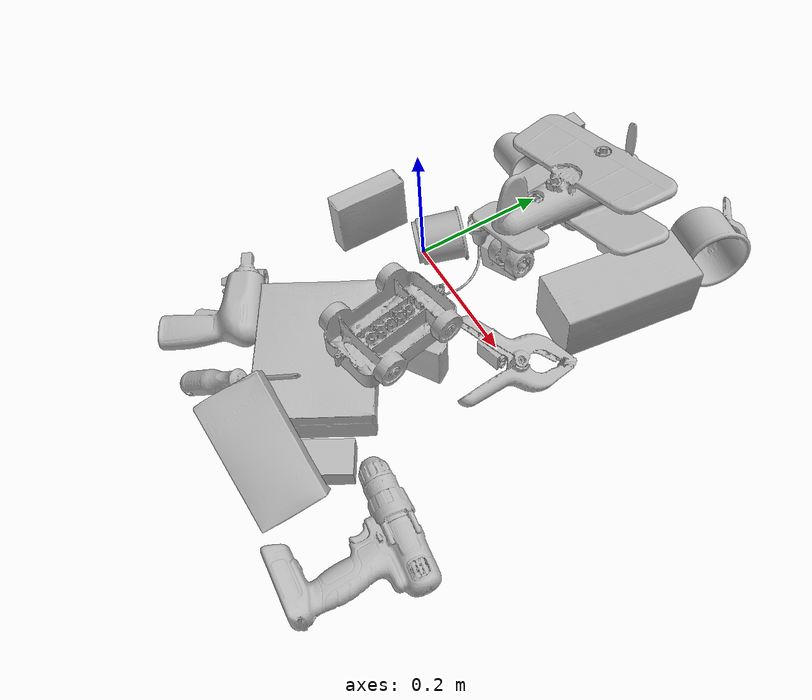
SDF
<sdf version="1.4">
  <world name="default">
    <light name="light1" type="point">
      <pose>0 0 1 0 0 0</pose>
      <diffuse>3 3 3 1</diffuse>
      <specular>3 3 3 1</specular>
    </light>
    <light name="light2" type="point">
      <pose>0 0.5 2 0 0 0</pose>
      <diffuse>1 1 1 1</diffuse>
      <specular>1 1 1 1</specular>
    </light>
    <light name="light3" type="point">
      <pose>0 0.5 2 0 0 0</pose>
      <diffuse>3 3 3 1</diffuse>
      <specular>3 3 3 1</specular>
    </light>
    <scene>
      <ambient>0.7 0.7 0.7</ambient>
    </scene>
    <model name="box21">
      <link name="link_box21">
        <collision name="default">
          <geometry>
            <mesh>
              <uri>model://cracker_box/collision_meshes/collision.obj</uri>
              <scale>1.0 1.0 1.0</scale>
            </mesh>
          </geometry>
          <surface>
            <friction>
              <ode>
                <mu>0.5</mu>
                <mu2>0.5</mu2>
              </ode>
            </friction>
          <contact>
        <ode>
            <max_vel>0</max_vel>
            <min_depth>0.0001</min_depth>
            <kp>1e8</kp>
        </ode>
    </contact></surface>
        </collision>
        <visual name="default">
          <geometry>
            <mesh>
              <uri>model://cracker_box/visual_meshes/visual.dae</uri>
              <scale>1.0 1.0 1.0</scale>
            </mesh>
          </geometry>
        </visual>
        <inertial>
          <mass>2.2869980335235596</mass>
          <pose>0.0009464151225984097 0.0002543425071053207 -0.0017029535956680775 -0.0003162075418873318 -0.011106487737663914 0.0025467956997025456</pose>
          <inertia>
            <ixx>0.005817102</ixx>
            <iyy>0.009605178</iyy>
            <izz>0.013707472</izz>
            <ixy>0</ixy>
            <ixz>0</ixz>
            <iyz>0</iyz>
          </inertia>
        </inertial>
      </link>
      <pose>0.10680188983678818 -0.22549621760845184 0.035532474517822266 3.1371357451281443 -0.016558332613100198 2.6215504623585653</pose>
    </model>
    <model name="box22">
      <link name="link_box22">
        <collision name="default">
          <geometry>
            <mesh>
              <uri>model://pudding_box/collision_meshes/collision.obj</uri>
              <scale>1.0 1.0 1.0</scale>
            </mesh>
          </geometry>
          <surface>
            <friction>
              <ode>
                <mu>0.5</mu>
                <mu2>0.5</mu2>
              </ode>
            </friction>
          <contact>
        <ode>
            <max_vel>0</max_vel>
            <min_depth>0.0001</min_depth>
            <kp>1e8</kp>
        </ode>
    </contact></surface>
        </collision>
        <visual name="default">
          <geometry>
            <mesh>
              <uri>model://pudding_box/visual_meshes/visual.dae</uri>
              <scale>1.0 1.0 1.0</scale>
            </mesh>
          </geometry>
        </visual>
        <inertial>
          <mass>0.5370154976844788</mass>
          <pose>0.0004894821904599667 0.0008067885646596551 -0.0005188827635720372 0.005213101796859606 -0.006603800100757192 0.02007981956729938</pose>
          <inertia>
            <ixx>0.0006070684</ixx>
            <iyy>0.00040843996</iyy>
            <izz>0.00089649507</izz>
            <ixy>0</ixy>
            <ixz>0</ixz>
            <iyz>0</iyz>
          </inertia>
        </inertial>
      </link>
      <pose>-0.07896944880485535 -0.0466650165617466 0.04517776519060135 -0.4108213677752322 1.549436258519895 -0.39202978498710317</pose>
    </model>
    <model name="box23">
      <link name="link_box23">
        <collision name="default">
          <geometry>
            <mesh>
              <uri>model://jenga/collision_meshes/collision.obj</uri>
              <scale>1.0 1.0 1.0</scale>
            </mesh>
          </geometry>
          <surface>
            <friction>
              <ode>
                <mu>0.5</mu>
                <mu2>0.5</mu2>
              </ode>
            </friction>
          <contact>
        <ode>
            <max_vel>0</max_vel>
            <min_depth>0.0001</min_depth>
            <kp>1e8</kp>
        </ode>
    </contact></surface>
        </collision>
        <visual name="default">
          <geometry>
            <mesh>
              <uri>model://jenga/visual_meshes/visual.dae</uri>
              <scale>1.0 1.0 1.0</scale>
            </mesh>
          </geometry>
        </visual>
        <inertial>
          <mass>0.17325031757354736</mass>
          <pose>-2.502855807051674e-07 -0.0001025000965455547 -4.0923401684267446e-05 0.0 -7.34215461761844e-07 0.0</pose>
          <inertia>
            <ixx>4.7942573e-05</ixx>
            <iyy>0.00032485754</iyy>
            <izz>0.00034681303</izz>
            <ixy>0</ixy>
            <ixz>0</ixz>
            <iyz>0</iyz>
          </inertia>
        </inertial>
      </link>
      <pose>0.2193950116634369 -0.31584635376930237 0.015000002458691597 1.9680395715557057e-07 -4.12945469387649e-08 -2.1061122771802925</pose>
    </model>
    <model name="cup1">
      <link name="link_cup1">
        <collision name="default">
          <geometry>
            <mesh>
              <uri>model://c_cups/collision_meshes/collision.obj</uri>
              <scale>1.0 1.0 1.0</scale>
            </mesh>
          </geometry>
          <surface>
            <friction>
              <ode>
                <mu>0.5</mu>
                <mu2>0.5</mu2>
              </ode>
            </friction>
          <contact>
        <ode>
            <max_vel>0</max_vel>
            <min_depth>0.0001</min_depth>
            <kp>1e8</kp>
        </ode>
    </contact></surface>
        </collision>
        <visual name="default">
          <geometry>
            <mesh>
              <uri>model://c_cups/visual_meshes/visual.dae</uri>
              <scale>1.0 1.0 1.0</scale>
            </mesh>
          </geometry>
        </visual>
        <inertial>
          <mass>0.033937059342861176</mass>
          <pose>0.0007237257086671889 0.002015391131862998 -0.0012750985333696008 0.3021568203324006 0.0134615240317058 -0.08771816491093205</pose>
          <inertia>
            <ixx>2.5238536e-05</ixx>
            <iyy>2.4792533e-05</iyy>
            <izz>2.2320162e-05</izz>
            <ixy>0</ixy>
            <ixz>0</ixz>
            <iyz>0</iyz>
          </inertia>
        </inertial>
      </link>
      <pose>-0.06458263844251633 0.2112550288438797 0.02982093021273613 1.4496393393348437 -0.7813097053704964 1.6023799585362548</pose>
    </model>
    <model name="cup2">
      <link name="link_cup2">
        <collision name="default">
          <geometry>
            <mesh>
              <uri>model://f_cups/collision_meshes/collision.obj</uri>
              <scale>1.0 1.0 1.0</scale>
            </mesh>
          </geometry>
          <surface>
            <friction>
              <ode>
                <mu>0.5</mu>
                <mu2>0.5</mu2>
              </ode>
            </friction>
          <contact>
        <ode>
            <max_vel>0</max_vel>
            <min_depth>0.0001</min_depth>
            <kp>1e8</kp>
        </ode>
    </contact></surface>
        </collision>
        <visual name="default">
          <geometry>
            <mesh>
              <uri>model://f_cups/visual_meshes/visual.dae</uri>
              <scale>1.0 1.0 1.0</scale>
            </mesh>
          </geometry>
        </visual>
        <inertial>
          <mass>0.10278050601482391</mass>
          <pose>-0.003171466989442706 -0.0006240068469196558 -0.003655537962913513 0.7862283183637603 -0.2607933822369466 -0.1823733550036739</pose>
          <inertia>
            <ixx>9.661645e-05</ixx>
            <iyy>0.00010135175</iyy>
            <izz>0.000105510015</izz>
            <ixy>0</ixy>
            <ixz>0</ixz>
            <iyz>0</iyz>
          </inertia>
        </inertial>
      </link>
      <pose>0.015771787613630295 0.019644824787974358 0.037031084299087524 1.3152907749460816 -1.1783067590841982 3.0158600071135977</pose>
    </model>
    <model name="box11">
      <link name="link_box11">
        <collision name="default">
          <geometry>
            <mesh>
              <uri>model://wood_block/collision_meshes/collision.obj</uri>
              <scale>1.0 1.0 1.0</scale>
            </mesh>
          </geometry>
          <surface>
            <friction>
              <ode>
                <mu>0.5</mu>
                <mu2>0.5</mu2>
              </ode>
            </friction>
          <contact>
        <ode>
            <max_vel>0</max_vel>
            <min_depth>0.0001</min_depth>
            <kp>1e8</kp>
        </ode>
    </contact></surface>
        </collision>
        <visual name="default">
          <geometry>
            <mesh>
              <uri>model://wood_block/visual_meshes/visual.dae</uri>
              <scale>1.0 1.0 1.0</scale>
            </mesh>
          </geometry>
        </visual>
        <inertial>
          <mass>2.321592330932617</mass>
          <pose>-5.813315056002466e-06 -0.000570809468626976 0.0002640858292579651 -0.052209755297172346 -0.005192694580027673 -0.006861376555374886</pose>
          <inertia>
            <ixx>0.0031066423</ixx>
            <iyy>0.009813884</iyy>
            <izz>0.009777175</izz>
            <ixy>0</ixy>
            <ixz>0</ixz>
            <iyz>0</iyz>
          </inertia>
        </inertial>
      </link>
      <pose>0.23893418908119202 0.17653954029083252 0.04570017009973526 1.5681614449747407 -0.00693536045482649 1.4296903299935313</pose>
    </model>
    <model name="box12">
      <link name="link_box12">
        <collision name="default">
          <geometry>
            <mesh>
              <uri>model://gelatin_box/collision_meshes/collision.obj</uri>
              <scale>1.0 1.0 1.0</scale>
            </mesh>
          </geometry>
          <surface>
            <friction>
              <ode>
                <mu>0.5</mu>
                <mu2>0.5</mu2>
              </ode>
            </friction>
          <contact>
        <ode>
            <max_vel>0</max_vel>
            <min_depth>0.0001</min_depth>
            <kp>1e8</kp>
        </ode>
    </contact></surface>
        </collision>
        <visual name="default">
          <geometry>
            <mesh>
              <uri>model://gelatin_box/visual_meshes/visual.dae</uri>
              <scale>1.0 1.0 1.0</scale>
            </mesh>
          </geometry>
        </visual>
        <inertial>
          <mass>0.2263340801000595</mass>
          <pose>0.0004319618456065655 0.00011156871914863586 -0.00036403207923285663 -0.001050371981036731 -0.004755818689382226 0.016440561334450605</pose>
          <inertia>
            <ixx>0.00015977336</ixx>
            <iyy>0.00011412529</iyy>
            <izz>0.00024321067</izz>
            <ixy>0</ixy>
            <ixz>0</ixz>
            <iyz>0</iyz>
          </inertia>
        </inertial>
      </link>
      <pose>0.16702014207839966 -0.10848953574895859 0.03644581884145737 0.2082256952907479 -1.5408405086531423 1.9192811949649025</pose>
    </model>
    <model name="box13">
      <link name="link_box13">
        <collision name="default">
          <geometry>
            <mesh>
              <uri>model://sugar_box/collision_meshes/collision.obj</uri>
              <scale>1.0 1.0 1.0</scale>
            </mesh>
          </geometry>
          <surface>
            <friction>
              <ode>
                <mu>0.5</mu>
                <mu2>0.5</mu2>
              </ode>
            </friction>
          <contact>
        <ode>
            <max_vel>0</max_vel>
            <min_depth>0.0001</min_depth>
            <kp>1e8</kp>
        </ode>
    </contact></surface>
        </collision>
        <visual name="default">
          <geometry>
            <mesh>
              <uri>model://sugar_box/visual_meshes/visual.dae</uri>
              <scale>1.0 1.0 1.0</scale>
            </mesh>
          </geometry>
        </visual>
        <inertial>
          <mass>0.4976349174976349</mass>
          <pose>0.0010343727190047503 3.849109634757042e-05 -0.00036364805418998003 -0.0004046263004245651 0.001050663405794887 0.002615379021776999</pose>
          <inertia>
            <ixx>0.0004146281</ixx>
            <iyy>0.0013401629</iyy>
            <izz>0.0016043353</izz>
            <ixy>0</ixy>
            <ixz>0</ixz>
            <iyz>0</iyz>
          </inertia>
        </inertial>
      </link>
      <pose>0.2088211625814438 -0.3484176695346832 0.06730122119188309 0.268100480789393 0.46559608995937396 0.03270886586633722</pose>
    </model>
    <model name="box14">
      <link name="link_box14">
        <collision name="default">
          <geometry>
            <mesh>
              <uri>model://rubiks_cube/collision_meshes/collision.obj</uri>
              <scale>1.0 1.0 1.0</scale>
            </mesh>
          </geometry>
          <surface>
            <friction>
              <ode>
                <mu>0.5</mu>
                <mu2>0.5</mu2>
              </ode>
            </friction>
          <contact>
        <ode>
            <max_vel>0</max_vel>
            <min_depth>0.0001</min_depth>
            <kp>1e8</kp>
        </ode>
    </contact></surface>
        </collision>
        <visual name="default">
          <geometry>
            <mesh>
              <uri>model://rubiks_cube/visual_meshes/visual.dae</uri>
              <scale>1.0 1.0 1.0</scale>
            </mesh>
          </geometry>
        </visual>
        <inertial>
          <mass>0.2531126141548157</mass>
          <pose>2.6721041649580002e-05 5.2569666877388954e-05 -7.264316536748083e-06 -0.05467274129792389 -0.0981396008906979 -0.0344563195746163</pose>
          <inertia>
            <ixx>0.00013986173</ixx>
            <iyy>0.00013920949</iyy>
            <izz>0.00014102072</izz>
            <ixy>0</ixy>
            <ixz>0</ixz>
            <iyz>0</iyz>
          </inertia>
        </inertial>
      </link>
      <pose>0.0841725766658783 0.09435877948999405 0.033540256321430206 -1.6510441307550887 1.3898736240658163 1.9190890091841726</pose>
    </model>
    <model name="cup15">
      <link name="link_cup15">
        <collision name="default">
          <geometry>
            <mesh>
              <uri>model://j_cups/collision_meshes/collision.obj</uri>
              <scale>1.0 1.0 1.0</scale>
            </mesh>
          </geometry>
          <surface>
            <friction>
              <ode>
                <mu>0.5</mu>
                <mu2>0.5</mu2>
              </ode>
            </friction>
          <contact>
        <ode>
            <max_vel>0</max_vel>
            <min_depth>0.0001</min_depth>
            <kp>1e8</kp>
        </ode>
    </contact></surface>
        </collision>
        <visual name="default">
          <geometry>
            <mesh>
              <uri>model://j_cups/visual_meshes/visual.dae</uri>
              <scale>1.0 1.0 1.0</scale>
            </mesh>
          </geometry>
        </visual>
        <inertial>
          <mass>0.12765173614025116</mass>
          <pose>0.0006164864171296358 0.0005398980574682355 -0.0013479006011039019 0.030303852295551513 0.03757989298695449 0.4386938541947324</pose>
          <inertia>
            <ixx>0.00018743309</ixx>
            <iyy>0.00018938213</iyy>
            <izz>0.0002160715</izz>
            <ixy>0</ixy>
            <ixz>0</ixz>
            <iyz>0</iyz>
          </inertia>
        </inertial>
      </link>
      <pose>0.2371559888124466 0.3369686007499695 0.04716603457927704 -1.4252282816258655 0.5357876956840368 -1.763027368029376</pose>
    </model>
    <model name="toy1">
      <link name="link_toy1">
        <collision name="default">
          <geometry>
            <mesh>
              <uri>model://f_lego_duplo/collision_meshes/collision.obj</uri>
              <scale>1.0 1.0 1.0</scale>
            </mesh>
          </geometry>
          <surface>
            <friction>
              <ode>
                <mu>0.5</mu>
                <mu2>0.5</mu2>
              </ode>
            </friction>
          <contact>
        <ode>
            <max_vel>0</max_vel>
            <min_depth>0.0001</min_depth>
            <kp>1e8</kp>
        </ode>
    </contact></surface>
        </collision>
        <visual name="default">
          <geometry>
            <mesh>
              <uri>model://f_lego_duplo/visual_meshes/visual.dae</uri>
              <scale>1.0 1.0 1.0</scale>
            </mesh>
          </geometry>
        </visual>
        <inertial>
          <mass>0.04013235494494438</mass>
          <pose>2.369376306887716e-05 0.00013393163681030273 0.0018837876850739121 0.029838734112773806 -0.014424842824784668 -0.6756708500035773</pose>
          <inertia>
            <ixx>8.480189e-06</ixx>
            <iyy>8.555736e-06</iyy>
            <izz>7.361164e-06</izz>
            <ixy>0</ixy>
            <ixz>0</ixz>
            <iyz>0</iyz>
          </inertia>
        </inertial>
      </link>
      <pose>-0.08198323845863342 0.3231777846813202 0.016363974660634995 1.328345275420268 -1.5707915758549562 0.24515713645839549</pose>
    </model>
    <model name="toy2">
      <link name="link_toy2">
        <collision name="default">
          <geometry>
            <mesh>
              <uri>model://e_toy_airplane/collision_meshes/collision.obj</uri>
              <scale>1.0 1.0 1.0</scale>
            </mesh>
          </geometry>
          <surface>
            <friction>
              <ode>
                <mu>0.5</mu>
                <mu2>0.5</mu2>
              </ode>
            </friction>
          <contact>
        <ode>
            <max_vel>0</max_vel>
            <min_depth>0.0001</min_depth>
            <kp>1e8</kp>
        </ode>
    </contact></surface>
        </collision>
        <visual name="default">
          <geometry>
            <mesh>
              <uri>model://e_toy_airplane/visual_meshes/visual.dae</uri>
              <scale>1.0 1.0 1.0</scale>
            </mesh>
          </geometry>
        </visual>
        <inertial>
          <mass>0.030105752870440483</mass>
          <pose>0.00011740480840671808 -2.248285454697907e-05 -0.011187204159796238 0.0055184715057391125 0.009228317867647443 0.150413097465581</pose>
          <inertia>
            <ixx>9.18862e-06</ixx>
            <iyy>9.094625e-06</iyy>
            <izz>2.761542e-06</izz>
            <ixy>0</ixy>
            <ixz>0</ixz>
            <iyz>0</iyz>
          </inertia>
        </inertial>
      </link>
      <pose>-0.08184531331062317 -0.2538807988166809 0.01397700421512127 1.77942318736036 -1.2761241676649078 -0.7335328385025851</pose>
    </model>
    <model name="toy3">
      <link name="link_toy3">
        <collision name="default">
          <geometry>
            <mesh>
              <uri>model://g_lego_duplo/collision_meshes/collision.obj</uri>
              <scale>1.0 1.0 1.0</scale>
            </mesh>
          </geometry>
          <surface>
            <friction>
              <ode>
                <mu>0.5</mu>
                <mu2>0.5</mu2>
              </ode>
            </friction>
          <contact>
        <ode>
            <max_vel>0</max_vel>
            <min_depth>0.0001</min_depth>
            <kp>1e8</kp>
        </ode>
    </contact></surface>
        </collision>
        <visual name="default">
          <geometry>
            <mesh>
              <uri>model://g_lego_duplo/visual_meshes/visual.dae</uri>
              <scale>1.0 1.0 1.0</scale>
            </mesh>
          </geometry>
        </visual>
        <inertial>
          <mass>0.4529305100440979</mass>
          <pose>-0.050047703087329865 0.0017554633086547256 0.0038806775119155645 0.010963008114131517 0.03810824387856379 -0.09653032518797504</pose>
          <inertia>
            <ixx>0.00065630145</ixx>
            <iyy>0.0019842102</iyy>
            <izz>0.0024823209</izz>
            <ixy>0</ixy>
            <ixz>0</ixz>
            <iyz>0</iyz>
          </inertia>
        </inertial>
      </link>
      <pose>0.13438159227371216 -0.07496528327465057 0.09455803036689758 3.1198792909088526 0.04055532216092126 1.7846115480750593</pose>
    </model>
    <model name="toy4">
      <link name="link_toy4">
        <collision name="default">
          <geometry>
            <mesh>
              <uri>model://b_lego_duplo/collision_meshes/collision.obj</uri>
              <scale>1.0 1.0 1.0</scale>
            </mesh>
          </geometry>
          <surface>
            <friction>
              <ode>
                <mu>0.5</mu>
                <mu2>0.5</mu2>
              </ode>
            </friction>
          <contact>
        <ode>
            <max_vel>0</max_vel>
            <min_depth>0.0001</min_depth>
            <kp>1e8</kp>
        </ode>
    </contact></surface>
        </collision>
        <visual name="default">
          <geometry>
            <mesh>
              <uri>model://b_lego_duplo/visual_meshes/visual.dae</uri>
              <scale>1.0 1.0 1.0</scale>
            </mesh>
          </geometry>
        </visual>
        <inertial>
          <mass>0.018499748781323433</mass>
          <pose>-0.00011053003981942311 -9.15247255761642e-06 0.001929429592564702 -0.037494549291744686 -0.026354734626349716 0.4518828938821803</pose>
          <inertia>
            <ixx>3.786112e-06</ixx>
            <iyy>3.8115643e-06</iyy>
            <izz>3.3733036e-06</izz>
            <ixy>0</ixy>
            <ixz>0</ixz>
            <iyz>0</iyz>
          </inertia>
        </inertial>
      </link>
      <pose>0.21248532831668854 -0.007836706936359406 0.016120467334985733 1.57228382892466 -0.011973896594855732 1.819154576809684</pose>
    </model>
    <model name="toy5">
      <link name="link_toy5">
        <collision name="default">
          <geometry>
            <mesh>
              <uri>model://b_toy_airplane/collision_meshes/collision.obj</uri>
              <scale>1.0 1.0 1.0</scale>
            </mesh>
          </geometry>
          <surface>
            <friction>
              <ode>
                <mu>0.5</mu>
                <mu2>0.5</mu2>
              </ode>
            </friction>
          <contact>
        <ode>
            <max_vel>0</max_vel>
            <min_depth>0.0001</min_depth>
            <kp>1e8</kp>
        </ode>
    </contact></surface>
        </collision>
        <visual name="default">
          <geometry>
            <mesh>
              <uri>model://b_toy_airplane/visual_meshes/visual.dae</uri>
              <scale>1.0 1.0 1.0</scale>
            </mesh>
          </geometry>
        </visual>
        <inertial>
          <mass>0.38904744386672974</mass>
          <pose>0.00508136348798871 0.004015582147985697 0.00954306498169899 -0.040018071915393034 -0.04022181905785318 -0.5601502897874057</pose>
          <inertia>
            <ixx>0.00072227366</ixx>
            <iyy>0.0002886998</iyy>
            <izz>0.0008985803</izz>
            <ixy>0</ixy>
            <ixz>0</ixz>
            <iyz>0</iyz>
          </inertia>
        </inertial>
      </link>
      <pose>-0.02376210317015648 -0.3076702952384949 0.0392669178545475 3.103006938287581 -0.2270310005036857 2.611261971613869</pose>
    </model>
    <model name="toy6">
      <link name="link_toy6">
        <collision name="default">
          <geometry>
            <mesh>
              <uri>model://a_toy_airplane/collision_meshes/collision.obj</uri>
              <scale>1.0 1.0 1.0</scale>
            </mesh>
          </geometry>
          <surface>
            <friction>
              <ode>
                <mu>0.5</mu>
                <mu2>0.5</mu2>
              </ode>
            </friction>
          <contact>
        <ode>
            <max_vel>0</max_vel>
            <min_depth>0.0001</min_depth>
            <kp>1e8</kp>
        </ode>
    </contact></surface>
        </collision>
        <visual name="default">
          <geometry>
            <mesh>
              <uri>model://a_toy_airplane/visual_meshes/visual.dae</uri>
              <scale>1.0 1.0 1.0</scale>
            </mesh>
          </geometry>
        </visual>
        <inertial>
          <mass>2.344027519226074</mass>
          <pose>0.025165099650621414 -0.003707322059199214 -0.0011962436838075519 -0.012016950381748406 -0.14663507119063698 0.004149124939747771</pose>
          <inertia>
            <ixx>0.008512287</ixx>
            <iyy>0.012404123</iyy>
            <izz>0.014523712</izz>
            <ixy>0</ixy>
            <ixz>0</ixz>
            <iyz>0</iyz>
          </inertia>
        </inertial>
      </link>
      <pose>0.10450537502765656 0.17115381360054016 0.1215713620185852 -0.20841539443636223 0.30813710792791177 1.6303611106899922</pose>
    </model>
    <model name="hardware1">
      <link name="link_hardware1">
        <collision name="default">
          <geometry>
            <mesh>
              <uri>model://power_drill/collision_meshes/collision.obj</uri>
              <scale>1.0 1.0 1.0</scale>
            </mesh>
          </geometry>
          <surface>
            <friction>
              <ode>
                <mu>0.5</mu>
                <mu2>0.5</mu2>
              </ode>
            </friction>
          <contact>
        <ode>
            <max_vel>0</max_vel>
            <min_depth>0.0001</min_depth>
            <kp>1e8</kp>
        </ode>
    </contact></surface>
        </collision>
        <visual name="default">
          <geometry>
            <mesh>
              <uri>model://power_drill/visual_meshes/visual.dae</uri>
              <scale>1.0 1.0 1.0</scale>
            </mesh>
          </geometry>
        </visual>
        <inertial>
          <mass>0.3504050374031067</mass>
          <pose>-0.014780547469854355 0.014369429089128971 0.0012414171360433102 0.0046091621872236125 0.004073022304059966 -0.18362696816981472</pose>
          <inertia>
            <ixx>0.001427917</ixx>
            <iyy>0.0005618108</iyy>
            <izz>0.0018858167</izz>
            <ixy>0</ixy>
            <ixz>0</ixz>
            <iyz>0</iyz>
          </inertia>
        </inertial>
      </link>
      <pose>0.35540878772735596 -0.3155178427696228 0.029245413839817047 -3.119649369726592 -0.038676384744202784 3.0363397946561115</pose>
    </model>
    <model name="hardware2">
      <link name="link_hardware2">
        <collision name="default">
          <geometry>
            <mesh>
              <uri>model://phillips_screwdriver/collision_meshes/collision.obj</uri>
              <scale>1.0 1.0 1.0</scale>
            </mesh>
          </geometry>
          <surface>
            <friction>
              <ode>
                <mu>0.5</mu>
                <mu2>0.5</mu2>
              </ode>
            </friction>
          <contact>
        <ode>
            <max_vel>0</max_vel>
            <min_depth>0.0001</min_depth>
            <kp>1e8</kp>
        </ode>
    </contact></surface>
        </collision>
        <visual name="default">
          <geometry>
            <mesh>
              <uri>model://phillips_screwdriver/visual_meshes/visual.dae</uri>
              <scale>1.0 1.0 1.0</scale>
            </mesh>
          </geometry>
        </visual>
        <inertial>
          <mass>0.06613585352897644</mass>
          <pose>-0.04777182638645172 0.0010362302418798208 -0.000455554953077808 -0.157256923583716 0.005850995849984215 -0.0021567369270283215</pose>
          <inertia>
            <ixx>7.770284e-06</ixx>
            <iyy>9.742579e-05</iyy>
            <izz>9.7508564e-05</izz>
            <ixy>0</ixy>
            <ixz>0</ixz>
            <iyz>0</iyz>
          </inertia>
        </inertial>
      </link>
      <pose>0.09813527762889862 -0.3315008282661438 0.06140435114502907 3.0383118750342373 -0.5350673831491101 0.7278345620338137</pose>
    </model>
    <model name="hardware3">
      <link name="link_hardware3">
        <collision name="default">
          <geometry>
            <mesh>
              <uri>model://large_clamp/collision_meshes/collision.obj</uri>
              <scale>1.0 1.0 1.0</scale>
            </mesh>
          </geometry>
          <surface>
            <friction>
              <ode>
                <mu>0.5</mu>
                <mu2>0.5</mu2>
              </ode>
            </friction>
          <contact>
        <ode>
            <max_vel>0</max_vel>
            <min_depth>0.0001</min_depth>
            <kp>1e8</kp>
        </ode>
    </contact></surface>
        </collision>
        <visual name="default">
          <geometry>
            <mesh>
              <uri>model://large_clamp/visual_meshes/visual.dae</uri>
              <scale>1.0 1.0 1.0</scale>
            </mesh>
          </geometry>
        </visual>
        <inertial>
          <mass>0.0812491774559021</mass>
          <pose>0.00636935792863369 0.00035856812610290945 -0.0001839803153416142 -0.0021330695247891995 0.009671592144941876 0.026633191629386817</pose>
          <inertia>
            <ixx>7.1684015e-05</ixx>
            <iyy>0.00013613176</iyy>
            <izz>0.00019693196</izz>
            <ixy>0</ixy>
            <ixz>0</ixz>
            <iyz>0</iyz>
          </inertia>
        </inertial>
      </link>
      <pose>0.2527085840702057 -0.0013986285775899887 0.03408303111791611 0.4265173674384751 0.2545765292390483 1.1226237939441603</pose>
    </model>
    <model name="hardware4">
      <link name="link_hardware4">
        <collision name="default">
          <geometry>
            <mesh>
              <uri>model://medium_clamp/collision_meshes/collision.obj</uri>
              <scale>1.0 1.0 1.0</scale>
            </mesh>
          </geometry>
          <surface>
            <friction>
              <ode>
                <mu>0.5</mu>
                <mu2>0.5</mu2>
              </ode>
            </friction>
          <contact>
        <ode>
            <max_vel>0</max_vel>
            <min_depth>0.0001</min_depth>
            <kp>1e8</kp>
        </ode>
    </contact></surface>
        </collision>
        <visual name="default">
          <geometry>
            <mesh>
              <uri>model://medium_clamp/visual_meshes/visual.dae</uri>
              <scale>1.0 1.0 1.0</scale>
            </mesh>
          </geometry>
        </visual>
        <inertial>
          <mass>0.04165364429354668</mass>
          <pose>0.0053909956477582455 0.00039532381924800575 -0.0001222159044118598 -0.0012269202016338824 0.0025845009837354585 0.038207769727488725</pose>
          <inertia>
            <ixx>1.134795e-05</ixx>
            <iyy>1.6514476e-05</iyy>
            <izz>2.5437248e-05</izz>
            <ixy>0</ixy>
            <ixz>0</ixz>
            <iyz>0</iyz>
          </inertia>
        </inertial>
      </link>
      <pose>0.20927105844020844 0.40746745467185974 0.013314548879861832 -3.0198529020266602 0.07748199482271995 0.10472590890818093</pose>
    </model>
  <physics type="ode">
      <max_contacts>50</max_contacts>
      <ode>
        <solver>
          <type>quick</type>
          <iters>75</iters>
        </solver>
        <constraints>
          <contact_max_correcting_vel>0</contact_max_correcting_vel>
          <contact_surface_layer>0</contact_surface_layer>
        </constraints>
      </ode>
    </physics></world>
</sdf>
